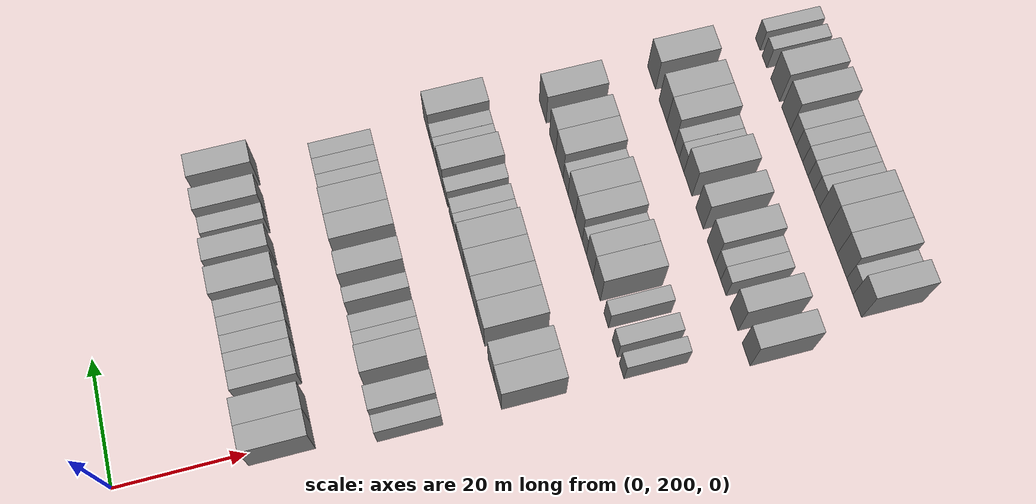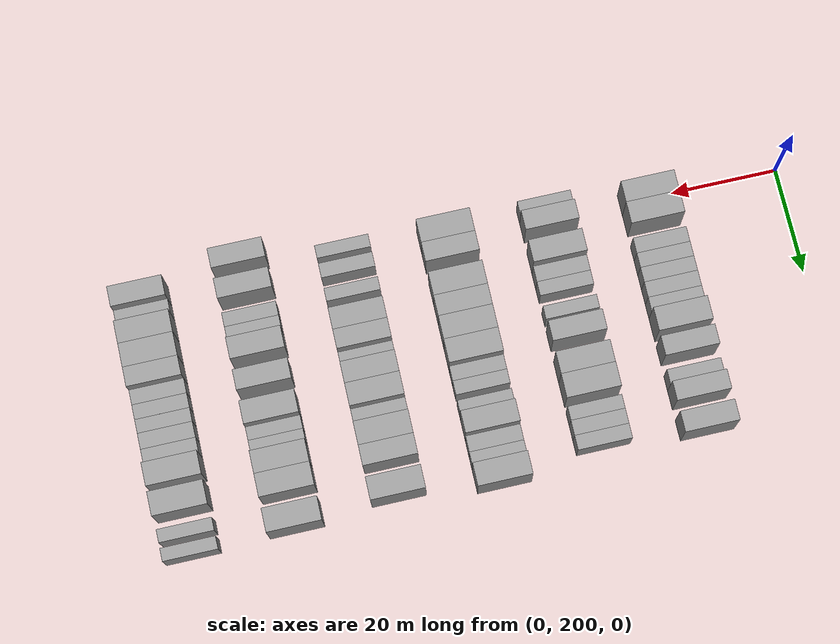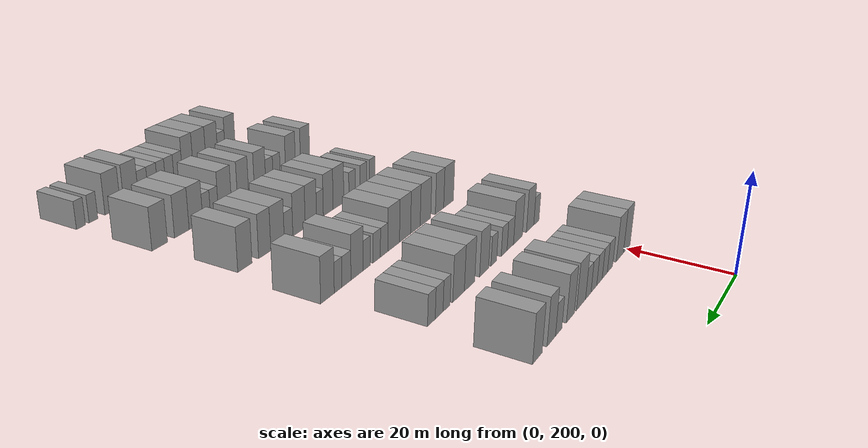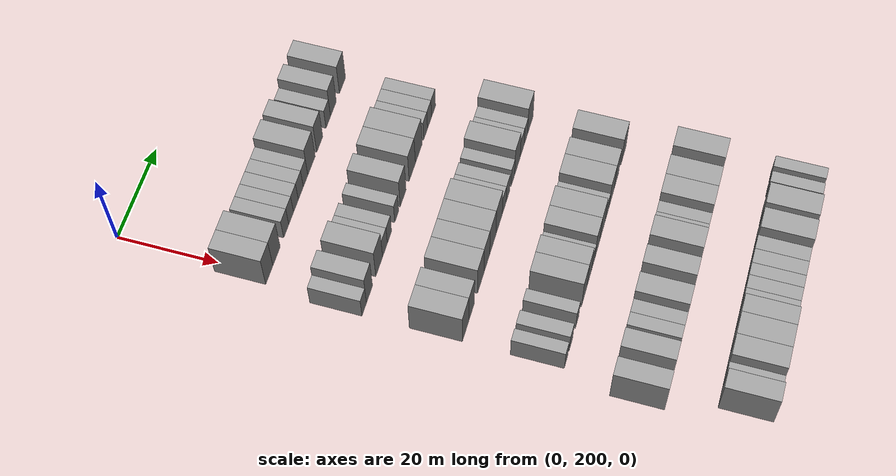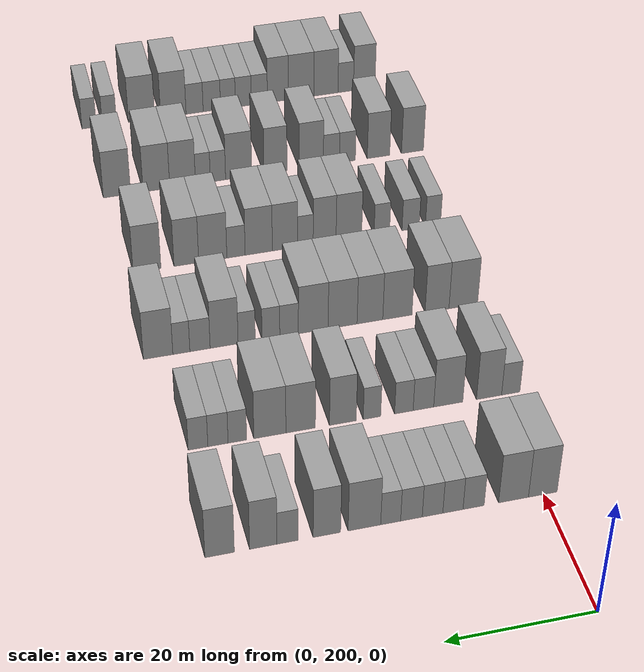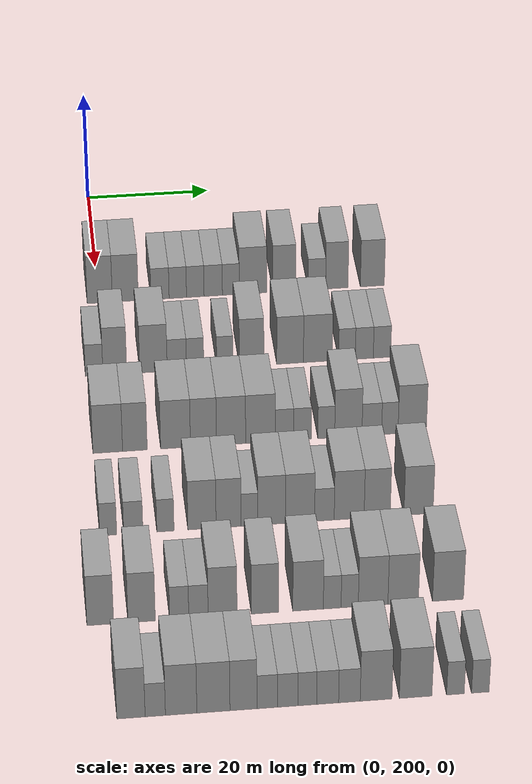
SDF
<sdf version="1.6">
 <world name="default">
  <model name="building_140">
   <static>1</static>
   <pose>25.0000 200.1590 0 0.000000 0.000000 0.000000</pose>
   <link name="link">
    <pose>0 0 4.50 0 0 0</pose>
    <collision name="collision"><geometry><box><size>10.0000 4.0054 9.0000</size></box></geometry></collision>
    <visual name="visual">
     <cast_shadows>0</cast_shadows>
     <geometry><box><size>10.0000 4.0054 9.0000</size></box></geometry>
     <material>
      <script>
       <uri>model://grey_wall/materials/scripts</uri>
       <uri>model://grey_wall/materials/textures</uri>
       <name>vrc/grey_wall</name>
      </script>
     </material>
    </visual>
   </link>
  </model>
  <model name="building_141">
   <static>1</static>
   <pose>25.0000 204.2304 0 0.000000 0.000000 0.000000</pose>
   <link name="link">
    <pose>0 0 4.50 0 0 0</pose>
    <collision name="collision"><geometry><box><size>10.0000 4.1374 9.0000</size></box></geometry></collision>
    <visual name="visual">
     <cast_shadows>0</cast_shadows>
     <geometry><box><size>10.0000 4.1374 9.0000</size></box></geometry>
     <material>
      <script>
       <uri>model://grey_wall/materials/scripts</uri>
       <uri>model://grey_wall/materials/textures</uri>
       <name>vrc/grey_wall</name>
      </script>
     </material>
    </visual>
   </link>
  </model>
  <model name="building_142">
   <static>1</static>
   <pose>25.0000 209.7519 0 0.000000 0.000000 0.000000</pose>
   <link name="link">
    <pose>0 0 3.00 0 0 0</pose>
    <collision name="collision"><geometry><box><size>10.0000 2.9057 6.0000</size></box></geometry></collision>
    <visual name="visual">
     <cast_shadows>0</cast_shadows>
     <geometry><box><size>10.0000 2.9057 6.0000</size></box></geometry>
     <material>
      <script>
       <uri>model://grey_wall/materials/scripts</uri>
       <uri>model://grey_wall/materials/textures</uri>
       <name>vrc/grey_wall</name>
      </script>
     </material>
    </visual>
   </link>
  </model>
  <model name="building_143">
   <static>1</static>
   <pose>25.0000 212.5921 0 0.000000 0.000000 0.000000</pose>
   <link name="link">
    <pose>0 0 3.00 0 0 0</pose>
    <collision name="collision"><geometry><box><size>10.0000 2.7747 6.0000</size></box></geometry></collision>
    <visual name="visual">
     <cast_shadows>0</cast_shadows>
     <geometry><box><size>10.0000 2.7747 6.0000</size></box></geometry>
     <material>
      <script>
       <uri>model://grey_wall/materials/scripts</uri>
       <uri>model://grey_wall/materials/textures</uri>
       <name>vrc/grey_wall</name>
      </script>
     </material>
    </visual>
   </link>
  </model>
  <model name="building_144">
   <static>1</static>
   <pose>25.0000 215.3852 0 0.000000 0.000000 0.000000</pose>
   <link name="link">
    <pose>0 0 3.00 0 0 0</pose>
    <collision name="collision"><geometry><box><size>10.0000 2.8116 6.0000</size></box></geometry></collision>
    <visual name="visual">
     <cast_shadows>0</cast_shadows>
     <geometry><box><size>10.0000 2.8116 6.0000</size></box></geometry>
     <material>
      <script>
       <uri>model://grey_wall/materials/scripts</uri>
       <uri>model://grey_wall/materials/textures</uri>
       <name>vrc/grey_wall</name>
      </script>
     </material>
    </visual>
   </link>
  </model>
  <model name="building_145">
   <static>1</static>
   <pose>25.0000 218.2593 0 0.000000 0.000000 0.000000</pose>
   <link name="link">
    <pose>0 0 3.00 0 0 0</pose>
    <collision name="collision"><geometry><box><size>10.0000 2.9365 6.0000</size></box></geometry></collision>
    <visual name="visual">
     <cast_shadows>0</cast_shadows>
     <geometry><box><size>10.0000 2.9365 6.0000</size></box></geometry>
     <material>
      <script>
       <uri>model://grey_wall/materials/scripts</uri>
       <uri>model://grey_wall/materials/textures</uri>
       <name>vrc/grey_wall</name>
      </script>
     </material>
    </visual>
   </link>
  </model>
  <model name="building_146">
   <static>1</static>
   <pose>25.0000 221.0781 0 0.000000 0.000000 0.000000</pose>
   <link name="link">
    <pose>0 0 3.00 0 0 0</pose>
    <collision name="collision"><geometry><box><size>10.0000 2.7011 6.0000</size></box></geometry></collision>
    <visual name="visual">
     <cast_shadows>0</cast_shadows>
     <geometry><box><size>10.0000 2.7011 6.0000</size></box></geometry>
     <material>
      <script>
       <uri>model://grey_wall/materials/scripts</uri>
       <uri>model://grey_wall/materials/textures</uri>
       <name>vrc/grey_wall</name>
      </script>
     </material>
    </visual>
   </link>
  </model>
  <model name="building_147">
   <static>1</static>
   <pose>25.0000 224.6262 0 0.000000 0.000000 0.000000</pose>
   <link name="link">
    <pose>0 0 4.50 0 0 0</pose>
    <collision name="collision"><geometry><box><size>10.0000 4.3952 9.0000</size></box></geometry></collision>
    <visual name="visual">
     <cast_shadows>0</cast_shadows>
     <geometry><box><size>10.0000 4.3952 9.0000</size></box></geometry>
     <material>
      <script>
       <uri>model://grey_wall/materials/scripts</uri>
       <uri>model://grey_wall/materials/textures</uri>
       <name>vrc/grey_wall</name>
      </script>
     </material>
    </visual>
   </link>
  </model>
  <model name="building_148">
   <static>1</static>
   <pose>25.0000 229.6574 0 0.000000 0.000000 0.000000</pose>
   <link name="link">
    <pose>0 0 4.50 0 0 0</pose>
    <collision name="collision"><geometry><box><size>10.0000 3.6674 9.0000</size></box></geometry></collision>
    <visual name="visual">
     <cast_shadows>0</cast_shadows>
     <geometry><box><size>10.0000 3.6674 9.0000</size></box></geometry>
     <material>
      <script>
       <uri>model://grey_wall/materials/scripts</uri>
       <uri>model://grey_wall/materials/textures</uri>
       <name>vrc/grey_wall</name>
      </script>
     </material>
    </visual>
   </link>
  </model>
  <model name="building_149">
   <static>1</static>
   <pose>25.0000 234.8963 0 0.000000 0.000000 0.000000</pose>
   <link name="link">
    <pose>0 0 3.00 0 0 0</pose>
    <collision name="collision"><geometry><box><size>10.0000 2.8103 6.0000</size></box></geometry></collision>
    <visual name="visual">
     <cast_shadows>0</cast_shadows>
     <geometry><box><size>10.0000 2.8103 6.0000</size></box></geometry>
     <material>
      <script>
       <uri>model://grey_wall/materials/scripts</uri>
       <uri>model://grey_wall/materials/textures</uri>
       <name>vrc/grey_wall</name>
      </script>
     </material>
    </visual>
   </link>
  </model>
  <model name="building_150">
   <static>1</static>
   <pose>25.0000 238.1025 0 0.000000 0.000000 0.000000</pose>
   <link name="link">
    <pose>0 0 4.50 0 0 0</pose>
    <collision name="collision"><geometry><box><size>10.0000 3.6022 9.0000</size></box></geometry></collision>
    <visual name="visual">
     <cast_shadows>0</cast_shadows>
     <geometry><box><size>10.0000 3.6022 9.0000</size></box></geometry>
     <material>
      <script>
       <uri>model://grey_wall/materials/scripts</uri>
       <uri>model://grey_wall/materials/textures</uri>
       <name>vrc/grey_wall</name>
      </script>
     </material>
    </visual>
   </link>
  </model>
  <model name="building_151">
   <static>1</static>
   <pose>25.0000 243.8329 0 0.000000 0.000000 0.000000</pose>
   <link name="link">
    <pose>0 0 4.50 0 0 0</pose>
    <collision name="collision"><geometry><box><size>10.0000 3.8587 9.0000</size></box></geometry></collision>
    <visual name="visual">
     <cast_shadows>0</cast_shadows>
     <geometry><box><size>10.0000 3.8587 9.0000</size></box></geometry>
     <material>
      <script>
       <uri>model://grey_wall/materials/scripts</uri>
       <uri>model://grey_wall/materials/textures</uri>
       <name>vrc/grey_wall</name>
      </script>
     </material>
    </visual>
   </link>
  </model>
  <model name="building_307">
   <static>1</static>
   <pose>44.0000 198.1488 0 0.000000 0.000000 0.000000</pose>
   <link name="link">
    <pose>0 0 3.00 0 0 0</pose>
    <collision name="collision"><geometry><box><size>10.0000 2.7019 6.0000</size></box></geometry></collision>
    <visual name="visual">
     <cast_shadows>0</cast_shadows>
     <geometry><box><size>10.0000 2.7019 6.0000</size></box></geometry>
     <material>
      <script>
       <uri>model://grey_wall/materials/scripts</uri>
       <uri>model://grey_wall/materials/textures</uri>
       <name>vrc/grey_wall</name>
      </script>
     </material>
    </visual>
   </link>
  </model>
  <model name="building_308">
   <static>1</static>
   <pose>44.0000 201.3424 0 0.000000 0.000000 0.000000</pose>
   <link name="link">
    <pose>0 0 4.50 0 0 0</pose>
    <collision name="collision"><geometry><box><size>10.0000 3.6854 9.0000</size></box></geometry></collision>
    <visual name="visual">
     <cast_shadows>0</cast_shadows>
     <geometry><box><size>10.0000 3.6854 9.0000</size></box></geometry>
     <material>
      <script>
       <uri>model://grey_wall/materials/scripts</uri>
       <uri>model://grey_wall/materials/textures</uri>
       <name>vrc/grey_wall</name>
      </script>
     </material>
    </visual>
   </link>
  </model>
  <model name="building_309">
   <static>1</static>
   <pose>44.0000 207.3023 0 0.000000 0.000000 0.000000</pose>
   <link name="link">
    <pose>0 0 4.50 0 0 0</pose>
    <collision name="collision"><geometry><box><size>10.0000 4.2344 9.0000</size></box></geometry></collision>
    <visual name="visual">
     <cast_shadows>0</cast_shadows>
     <geometry><box><size>10.0000 4.2344 9.0000</size></box></geometry>
     <material>
      <script>
       <uri>model://grey_wall/materials/scripts</uri>
       <uri>model://grey_wall/materials/textures</uri>
       <name>vrc/grey_wall</name>
      </script>
     </material>
    </visual>
   </link>
  </model>
  <model name="building_310">
   <static>1</static>
   <pose>44.0000 210.9108 0 0.000000 0.000000 0.000000</pose>
   <link name="link">
    <pose>0 0 3.00 0 0 0</pose>
    <collision name="collision"><geometry><box><size>10.0000 2.9826 6.0000</size></box></geometry></collision>
    <visual name="visual">
     <cast_shadows>0</cast_shadows>
     <geometry><box><size>10.0000 2.9826 6.0000</size></box></geometry>
     <material>
      <script>
       <uri>model://grey_wall/materials/scripts</uri>
       <uri>model://grey_wall/materials/textures</uri>
       <name>vrc/grey_wall</name>
      </script>
     </material>
    </visual>
   </link>
  </model>
  <model name="building_311">
   <static>1</static>
   <pose>44.0000 213.7410 0 0.000000 0.000000 0.000000</pose>
   <link name="link">
    <pose>0 0 3.00 0 0 0</pose>
    <collision name="collision"><geometry><box><size>10.0000 2.6779 6.0000</size></box></geometry></collision>
    <visual name="visual">
     <cast_shadows>0</cast_shadows>
     <geometry><box><size>10.0000 2.6779 6.0000</size></box></geometry>
     <material>
      <script>
       <uri>model://grey_wall/materials/scripts</uri>
       <uri>model://grey_wall/materials/textures</uri>
       <name>vrc/grey_wall</name>
      </script>
     </material>
    </visual>
   </link>
  </model>
  <model name="building_312">
   <static>1</static>
   <pose>44.0000 218.3348 0 0.000000 0.000000 0.000000</pose>
   <link name="link">
    <pose>0 0 3.00 0 0 0</pose>
    <collision name="collision"><geometry><box><size>10.0000 2.5097 6.0000</size></box></geometry></collision>
    <visual name="visual">
     <cast_shadows>0</cast_shadows>
     <geometry><box><size>10.0000 2.5097 6.0000</size></box></geometry>
     <material>
      <script>
       <uri>model://grey_wall/materials/scripts</uri>
       <uri>model://grey_wall/materials/textures</uri>
       <name>vrc/grey_wall</name>
      </script>
     </material>
    </visual>
   </link>
  </model>
  <model name="building_313">
   <static>1</static>
   <pose>44.0000 222.4960 0 0.000000 0.000000 0.000000</pose>
   <link name="link">
    <pose>0 0 4.50 0 0 0</pose>
    <collision name="collision"><geometry><box><size>10.0000 3.8126 9.0000</size></box></geometry></collision>
    <visual name="visual">
     <cast_shadows>0</cast_shadows>
     <geometry><box><size>10.0000 3.8126 9.0000</size></box></geometry>
     <material>
      <script>
       <uri>model://grey_wall/materials/scripts</uri>
       <uri>model://grey_wall/materials/textures</uri>
       <name>vrc/grey_wall</name>
      </script>
     </material>
    </visual>
   </link>
  </model>
  <model name="building_314">
   <static>1</static>
   <pose>44.0000 228.4842 0 0.000000 0.000000 0.000000</pose>
   <link name="link">
    <pose>0 0 4.50 0 0 0</pose>
    <collision name="collision"><geometry><box><size>10.0000 4.1638 9.0000</size></box></geometry></collision>
    <visual name="visual">
     <cast_shadows>0</cast_shadows>
     <geometry><box><size>10.0000 4.1638 9.0000</size></box></geometry>
     <material>
      <script>
       <uri>model://grey_wall/materials/scripts</uri>
       <uri>model://grey_wall/materials/textures</uri>
       <name>vrc/grey_wall</name>
      </script>
     </material>
    </visual>
   </link>
  </model>
  <model name="building_315">
   <static>1</static>
   <pose>44.0000 232.8150 0 0.000000 0.000000 0.000000</pose>
   <link name="link">
    <pose>0 0 4.50 0 0 0</pose>
    <collision name="collision"><geometry><box><size>10.0000 4.4979 9.0000</size></box></geometry></collision>
    <visual name="visual">
     <cast_shadows>0</cast_shadows>
     <geometry><box><size>10.0000 4.4979 9.0000</size></box></geometry>
     <material>
      <script>
       <uri>model://grey_wall/materials/scripts</uri>
       <uri>model://grey_wall/materials/textures</uri>
       <name>vrc/grey_wall</name>
      </script>
     </material>
    </visual>
   </link>
  </model>
  <model name="building_316">
   <static>1</static>
   <pose>44.0000 237.3608 0 0.000000 0.000000 0.000000</pose>
   <link name="link">
    <pose>0 0 3.00 0 0 0</pose>
    <collision name="collision"><geometry><box><size>10.0000 2.5938 6.0000</size></box></geometry></collision>
    <visual name="visual">
     <cast_shadows>0</cast_shadows>
     <geometry><box><size>10.0000 2.5938 6.0000</size></box></geometry>
     <material>
      <script>
       <uri>model://grey_wall/materials/scripts</uri>
       <uri>model://grey_wall/materials/textures</uri>
       <name>vrc/grey_wall</name>
      </script>
     </material>
    </visual>
   </link>
  </model>
  <model name="building_317">
   <static>1</static>
   <pose>44.0000 240.0627 0 0.000000 0.000000 0.000000</pose>
   <link name="link">
    <pose>0 0 3.00 0 0 0</pose>
    <collision name="collision"><geometry><box><size>10.0000 2.8099 6.0000</size></box></geometry></collision>
    <visual name="visual">
     <cast_shadows>0</cast_shadows>
     <geometry><box><size>10.0000 2.8099 6.0000</size></box></geometry>
     <material>
      <script>
       <uri>model://grey_wall/materials/scripts</uri>
       <uri>model://grey_wall/materials/textures</uri>
       <name>vrc/grey_wall</name>
      </script>
     </material>
    </visual>
   </link>
  </model>
  <model name="building_318">
   <static>1</static>
   <pose>44.0000 242.8304 0 0.000000 0.000000 0.000000</pose>
   <link name="link">
    <pose>0 0 3.00 0 0 0</pose>
    <collision name="collision"><geometry><box><size>10.0000 2.7255 6.0000</size></box></geometry></collision>
    <visual name="visual">
     <cast_shadows>0</cast_shadows>
     <geometry><box><size>10.0000 2.7255 6.0000</size></box></geometry>
     <material>
      <script>
       <uri>model://grey_wall/materials/scripts</uri>
       <uri>model://grey_wall/materials/textures</uri>
       <name>vrc/grey_wall</name>
      </script>
     </material>
    </visual>
   </link>
  </model>
  <model name="building_486">
   <static>1</static>
   <pose>63.0000 199.0550 0 0.000000 0.000000 0.000000</pose>
   <link name="link">
    <pose>0 0 4.50 0 0 0</pose>
    <collision name="collision"><geometry><box><size>10.0000 4.4275 9.0000</size></box></geometry></collision>
    <visual name="visual">
     <cast_shadows>0</cast_shadows>
     <geometry><box><size>10.0000 4.4275 9.0000</size></box></geometry>
     <material>
      <script>
       <uri>model://grey_wall/materials/scripts</uri>
       <uri>model://grey_wall/materials/textures</uri>
       <name>vrc/grey_wall</name>
      </script>
     </material>
    </visual>
   </link>
  </model>
  <model name="building_487">
   <static>1</static>
   <pose>63.0000 203.1092 0 0.000000 0.000000 0.000000</pose>
   <link name="link">
    <pose>0 0 4.50 0 0 0</pose>
    <collision name="collision"><geometry><box><size>10.0000 3.6809 9.0000</size></box></geometry></collision>
    <visual name="visual">
     <cast_shadows>0</cast_shadows>
     <geometry><box><size>10.0000 3.6809 9.0000</size></box></geometry>
     <material>
      <script>
       <uri>model://grey_wall/materials/scripts</uri>
       <uri>model://grey_wall/materials/textures</uri>
       <name>vrc/grey_wall</name>
      </script>
     </material>
    </visual>
   </link>
  </model>
  <model name="building_488">
   <static>1</static>
   <pose>63.0000 209.1807 0 0.000000 0.000000 0.000000</pose>
   <link name="link">
    <pose>0 0 4.50 0 0 0</pose>
    <collision name="collision"><geometry><box><size>10.0000 4.4621 9.0000</size></box></geometry></collision>
    <visual name="visual">
     <cast_shadows>0</cast_shadows>
     <geometry><box><size>10.0000 4.4621 9.0000</size></box></geometry>
     <material>
      <script>
       <uri>model://grey_wall/materials/scripts</uri>
       <uri>model://grey_wall/materials/textures</uri>
       <name>vrc/grey_wall</name>
      </script>
     </material>
    </visual>
   </link>
  </model>
  <model name="building_489">
   <static>1</static>
   <pose>63.0000 213.3642 0 0.000000 0.000000 0.000000</pose>
   <link name="link">
    <pose>0 0 4.50 0 0 0</pose>
    <collision name="collision"><geometry><box><size>10.0000 3.9049 9.0000</size></box></geometry></collision>
    <visual name="visual">
     <cast_shadows>0</cast_shadows>
     <geometry><box><size>10.0000 3.9049 9.0000</size></box></geometry>
     <material>
      <script>
       <uri>model://grey_wall/materials/scripts</uri>
       <uri>model://grey_wall/materials/textures</uri>
       <name>vrc/grey_wall</name>
      </script>
     </material>
    </visual>
   </link>
  </model>
  <model name="building_490">
   <static>1</static>
   <pose>63.0000 217.5057 0 0.000000 0.000000 0.000000</pose>
   <link name="link">
    <pose>0 0 4.50 0 0 0</pose>
    <collision name="collision"><geometry><box><size>10.0000 4.3782 9.0000</size></box></geometry></collision>
    <visual name="visual">
     <cast_shadows>0</cast_shadows>
     <geometry><box><size>10.0000 4.3782 9.0000</size></box></geometry>
     <material>
      <script>
       <uri>model://grey_wall/materials/scripts</uri>
       <uri>model://grey_wall/materials/textures</uri>
       <name>vrc/grey_wall</name>
      </script>
     </material>
    </visual>
   </link>
  </model>
  <model name="building_491">
   <static>1</static>
   <pose>63.0000 221.9222 0 0.000000 0.000000 0.000000</pose>
   <link name="link">
    <pose>0 0 4.50 0 0 0</pose>
    <collision name="collision"><geometry><box><size>10.0000 4.4547 9.0000</size></box></geometry></collision>
    <visual name="visual">
     <cast_shadows>0</cast_shadows>
     <geometry><box><size>10.0000 4.4547 9.0000</size></box></geometry>
     <material>
      <script>
       <uri>model://grey_wall/materials/scripts</uri>
       <uri>model://grey_wall/materials/textures</uri>
       <name>vrc/grey_wall</name>
      </script>
     </material>
    </visual>
   </link>
  </model>
  <model name="building_492">
   <static>1</static>
   <pose>63.0000 225.5348 0 0.000000 0.000000 0.000000</pose>
   <link name="link">
    <pose>0 0 3.00 0 0 0</pose>
    <collision name="collision"><geometry><box><size>10.0000 2.7705 6.0000</size></box></geometry></collision>
    <visual name="visual">
     <cast_shadows>0</cast_shadows>
     <geometry><box><size>10.0000 2.7705 6.0000</size></box></geometry>
     <material>
      <script>
       <uri>model://grey_wall/materials/scripts</uri>
       <uri>model://grey_wall/materials/textures</uri>
       <name>vrc/grey_wall</name>
      </script>
     </material>
    </visual>
   </link>
  </model>
  <model name="building_493">
   <static>1</static>
   <pose>63.0000 228.2437 0 0.000000 0.000000 0.000000</pose>
   <link name="link">
    <pose>0 0 3.00 0 0 0</pose>
    <collision name="collision"><geometry><box><size>10.0000 2.6472 6.0000</size></box></geometry></collision>
    <visual name="visual">
     <cast_shadows>0</cast_shadows>
     <geometry><box><size>10.0000 2.6472 6.0000</size></box></geometry>
     <material>
      <script>
       <uri>model://grey_wall/materials/scripts</uri>
       <uri>model://grey_wall/materials/textures</uri>
       <name>vrc/grey_wall</name>
      </script>
     </material>
    </visual>
   </link>
  </model>
  <model name="building_494">
   <static>1</static>
   <pose>63.0000 231.8368 0 0.000000 0.000000 0.000000</pose>
   <link name="link">
    <pose>0 0 3.00 0 0 0</pose>
    <collision name="collision"><geometry><box><size>10.0000 2.5389 6.0000</size></box></geometry></collision>
    <visual name="visual">
     <cast_shadows>0</cast_shadows>
     <geometry><box><size>10.0000 2.5389 6.0000</size></box></geometry>
     <material>
      <script>
       <uri>model://grey_wall/materials/scripts</uri>
       <uri>model://grey_wall/materials/textures</uri>
       <name>vrc/grey_wall</name>
      </script>
     </material>
    </visual>
   </link>
  </model>
  <model name="building_495">
   <static>1</static>
   <pose>63.0000 235.1678 0 0.000000 0.000000 0.000000</pose>
   <link name="link">
    <pose>0 0 4.50 0 0 0</pose>
    <collision name="collision"><geometry><box><size>10.0000 4.1231 9.0000</size></box></geometry></collision>
    <visual name="visual">
     <cast_shadows>0</cast_shadows>
     <geometry><box><size>10.0000 4.1231 9.0000</size></box></geometry>
     <material>
      <script>
       <uri>model://grey_wall/materials/scripts</uri>
       <uri>model://grey_wall/materials/textures</uri>
       <name>vrc/grey_wall</name>
      </script>
     </material>
    </visual>
   </link>
  </model>
  <model name="building_496">
   <static>1</static>
   <pose>63.0000 238.7147 0 0.000000 0.000000 0.000000</pose>
   <link name="link">
    <pose>0 0 3.00 0 0 0</pose>
    <collision name="collision"><geometry><box><size>10.0000 2.9708 6.0000</size></box></geometry></collision>
    <visual name="visual">
     <cast_shadows>0</cast_shadows>
     <geometry><box><size>10.0000 2.9708 6.0000</size></box></geometry>
     <material>
      <script>
       <uri>model://grey_wall/materials/scripts</uri>
       <uri>model://grey_wall/materials/textures</uri>
       <name>vrc/grey_wall</name>
      </script>
     </material>
    </visual>
   </link>
  </model>
  <model name="building_497">
   <static>1</static>
   <pose>63.0000 241.4431 0 0.000000 0.000000 0.000000</pose>
   <link name="link">
    <pose>0 0 3.00 0 0 0</pose>
    <collision name="collision"><geometry><box><size>10.0000 2.4859 6.0000</size></box></geometry></collision>
    <visual name="visual">
     <cast_shadows>0</cast_shadows>
     <geometry><box><size>10.0000 2.4859 6.0000</size></box></geometry>
     <material>
      <script>
       <uri>model://grey_wall/materials/scripts</uri>
       <uri>model://grey_wall/materials/textures</uri>
       <name>vrc/grey_wall</name>
      </script>
     </material>
    </visual>
   </link>
  </model>
  <model name="building_498">
   <static>1</static>
   <pose>63.0000 244.8327 0 0.000000 0.000000 0.000000</pose>
   <link name="link">
    <pose>0 0 4.50 0 0 0</pose>
    <collision name="collision"><geometry><box><size>10.0000 4.2933 9.0000</size></box></geometry></collision>
    <visual name="visual">
     <cast_shadows>0</cast_shadows>
     <geometry><box><size>10.0000 4.2933 9.0000</size></box></geometry>
     <material>
      <script>
       <uri>model://grey_wall/materials/scripts</uri>
       <uri>model://grey_wall/materials/textures</uri>
       <name>vrc/grey_wall</name>
      </script>
     </material>
    </visual>
   </link>
  </model>
  <model name="building_648">
   <static>1</static>
   <pose>82.0000 197.9364 0 0.000000 0.000000 0.000000</pose>
   <link name="link">
    <pose>0 0 3.00 0 0 0</pose>
    <collision name="collision"><geometry><box><size>10.0000 2.4575 6.0000</size></box></geometry></collision>
    <visual name="visual">
     <cast_shadows>0</cast_shadows>
     <geometry><box><size>10.0000 2.4575 6.0000</size></box></geometry>
     <material>
      <script>
       <uri>model://grey_wall/materials/scripts</uri>
       <uri>model://grey_wall/materials/textures</uri>
       <name>vrc/grey_wall</name>
      </script>
     </material>
    </visual>
   </link>
  </model>
  <model name="building_649">
   <static>1</static>
   <pose>82.0000 201.5568 0 0.000000 0.000000 0.000000</pose>
   <link name="link">
    <pose>0 0 3.00 0 0 0</pose>
    <collision name="collision"><geometry><box><size>10.0000 2.7833 6.0000</size></box></geometry></collision>
    <visual name="visual">
     <cast_shadows>0</cast_shadows>
     <geometry><box><size>10.0000 2.7833 6.0000</size></box></geometry>
     <material>
      <script>
       <uri>model://grey_wall/materials/scripts</uri>
       <uri>model://grey_wall/materials/textures</uri>
       <name>vrc/grey_wall</name>
      </script>
     </material>
    </visual>
   </link>
  </model>
  <model name="building_650">
   <static>1</static>
   <pose>82.0000 206.1952 0 0.000000 0.000000 0.000000</pose>
   <link name="link">
    <pose>0 0 3.00 0 0 0</pose>
    <collision name="collision"><geometry><box><size>10.0000 2.4934 6.0000</size></box></geometry></collision>
    <visual name="visual">
     <cast_shadows>0</cast_shadows>
     <geometry><box><size>10.0000 2.4934 6.0000</size></box></geometry>
     <material>
      <script>
       <uri>model://grey_wall/materials/scripts</uri>
       <uri>model://grey_wall/materials/textures</uri>
       <name>vrc/grey_wall</name>
      </script>
     </material>
    </visual>
   </link>
  </model>
  <model name="building_651">
   <static>1</static>
   <pose>82.0000 211.4859 0 0.000000 0.000000 0.000000</pose>
   <link name="link">
    <pose>0 0 4.50 0 0 0</pose>
    <collision name="collision"><geometry><box><size>10.0000 4.0881 9.0000</size></box></geometry></collision>
    <visual name="visual">
     <cast_shadows>0</cast_shadows>
     <geometry><box><size>10.0000 4.0881 9.0000</size></box></geometry>
     <material>
      <script>
       <uri>model://grey_wall/materials/scripts</uri>
       <uri>model://grey_wall/materials/textures</uri>
       <name>vrc/grey_wall</name>
      </script>
     </material>
    </visual>
   </link>
  </model>
  <model name="building_652">
   <static>1</static>
   <pose>82.0000 215.3444 0 0.000000 0.000000 0.000000</pose>
   <link name="link">
    <pose>0 0 4.50 0 0 0</pose>
    <collision name="collision"><geometry><box><size>10.0000 3.6287 9.0000</size></box></geometry></collision>
    <visual name="visual">
     <cast_shadows>0</cast_shadows>
     <geometry><box><size>10.0000 3.6287 9.0000</size></box></geometry>
     <material>
      <script>
       <uri>model://grey_wall/materials/scripts</uri>
       <uri>model://grey_wall/materials/textures</uri>
       <name>vrc/grey_wall</name>
      </script>
     </material>
    </visual>
   </link>
  </model>
  <model name="building_653">
   <static>1</static>
   <pose>82.0000 218.3775 0 0.000000 0.000000 0.000000</pose>
   <link name="link">
    <pose>0 0 3.00 0 0 0</pose>
    <collision name="collision"><geometry><box><size>10.0000 2.4375 6.0000</size></box></geometry></collision>
    <visual name="visual">
     <cast_shadows>0</cast_shadows>
     <geometry><box><size>10.0000 2.4375 6.0000</size></box></geometry>
     <material>
      <script>
       <uri>model://grey_wall/materials/scripts</uri>
       <uri>model://grey_wall/materials/textures</uri>
       <name>vrc/grey_wall</name>
      </script>
     </material>
    </visual>
   </link>
  </model>
  <model name="building_654">
   <static>1</static>
   <pose>82.0000 221.5979 0 0.000000 0.000000 0.000000</pose>
   <link name="link">
    <pose>0 0 4.50 0 0 0</pose>
    <collision name="collision"><geometry><box><size>10.0000 4.0035 9.0000</size></box></geometry></collision>
    <visual name="visual">
     <cast_shadows>0</cast_shadows>
     <geometry><box><size>10.0000 4.0035 9.0000</size></box></geometry>
     <material>
      <script>
       <uri>model://grey_wall/materials/scripts</uri>
       <uri>model://grey_wall/materials/textures</uri>
       <name>vrc/grey_wall</name>
      </script>
     </material>
    </visual>
   </link>
  </model>
  <model name="building_655">
   <static>1</static>
   <pose>82.0000 225.7274 0 0.000000 0.000000 0.000000</pose>
   <link name="link">
    <pose>0 0 4.50 0 0 0</pose>
    <collision name="collision"><geometry><box><size>10.0000 4.2553 9.0000</size></box></geometry></collision>
    <visual name="visual">
     <cast_shadows>0</cast_shadows>
     <geometry><box><size>10.0000 4.2553 9.0000</size></box></geometry>
     <material>
      <script>
       <uri>model://grey_wall/materials/scripts</uri>
       <uri>model://grey_wall/materials/textures</uri>
       <name>vrc/grey_wall</name>
      </script>
     </material>
    </visual>
   </link>
  </model>
  <model name="building_656">
   <static>1</static>
   <pose>82.0000 229.2806 0 0.000000 0.000000 0.000000</pose>
   <link name="link">
    <pose>0 0 3.00 0 0 0</pose>
    <collision name="collision"><geometry><box><size>10.0000 2.8510 6.0000</size></box></geometry></collision>
    <visual name="visual">
     <cast_shadows>0</cast_shadows>
     <geometry><box><size>10.0000 2.8510 6.0000</size></box></geometry>
     <material>
      <script>
       <uri>model://grey_wall/materials/scripts</uri>
       <uri>model://grey_wall/materials/textures</uri>
       <name>vrc/grey_wall</name>
      </script>
     </material>
    </visual>
   </link>
  </model>
  <model name="building_657">
   <static>1</static>
   <pose>82.0000 232.8913 0 0.000000 0.000000 0.000000</pose>
   <link name="link">
    <pose>0 0 4.50 0 0 0</pose>
    <collision name="collision"><geometry><box><size>10.0000 4.3705 9.0000</size></box></geometry></collision>
    <visual name="visual">
     <cast_shadows>0</cast_shadows>
     <geometry><box><size>10.0000 4.3705 9.0000</size></box></geometry>
     <material>
      <script>
       <uri>model://grey_wall/materials/scripts</uri>
       <uri>model://grey_wall/materials/textures</uri>
       <name>vrc/grey_wall</name>
      </script>
     </material>
    </visual>
   </link>
  </model>
  <model name="building_658">
   <static>1</static>
   <pose>82.0000 236.9860 0 0.000000 0.000000 0.000000</pose>
   <link name="link">
    <pose>0 0 4.50 0 0 0</pose>
    <collision name="collision"><geometry><box><size>10.0000 3.8188 9.0000</size></box></geometry></collision>
    <visual name="visual">
     <cast_shadows>0</cast_shadows>
     <geometry><box><size>10.0000 3.8188 9.0000</size></box></geometry>
     <material>
      <script>
       <uri>model://grey_wall/materials/scripts</uri>
       <uri>model://grey_wall/materials/textures</uri>
       <name>vrc/grey_wall</name>
      </script>
     </material>
    </visual>
   </link>
  </model>
  <model name="building_659">
   <static>1</static>
   <pose>82.0000 243.0309 0 0.000000 0.000000 0.000000</pose>
   <link name="link">
    <pose>0 0 4.50 0 0 0</pose>
    <collision name="collision"><geometry><box><size>10.0000 4.2709 9.0000</size></box></geometry></collision>
    <visual name="visual">
     <cast_shadows>0</cast_shadows>
     <geometry><box><size>10.0000 4.2709 9.0000</size></box></geometry>
     <material>
      <script>
       <uri>model://grey_wall/materials/scripts</uri>
       <uri>model://grey_wall/materials/textures</uri>
       <name>vrc/grey_wall</name>
      </script>
     </material>
    </visual>
   </link>
  </model>
  <model name="building_830">
   <static>1</static>
   <pose>101.0000 195.6393 0 0.000000 0.000000 0.000000</pose>
   <link name="link">
    <pose>0 0 4.50 0 0 0</pose>
    <collision name="collision"><geometry><box><size>10.0000 3.7282 9.0000</size></box></geometry></collision>
    <visual name="visual">
     <cast_shadows>0</cast_shadows>
     <geometry><box><size>10.0000 3.7282 9.0000</size></box></geometry>
     <material>
      <script>
       <uri>model://grey_wall/materials/scripts</uri>
       <uri>model://grey_wall/materials/textures</uri>
       <name>vrc/grey_wall</name>
      </script>
     </material>
    </visual>
   </link>
  </model>
  <model name="building_831">
   <static>1</static>
   <pose>101.0000 201.4056 0 0.000000 0.000000 0.000000</pose>
   <link name="link">
    <pose>0 0 4.50 0 0 0</pose>
    <collision name="collision"><geometry><box><size>10.0000 3.8043 9.0000</size></box></geometry></collision>
    <visual name="visual">
     <cast_shadows>0</cast_shadows>
     <geometry><box><size>10.0000 3.8043 9.0000</size></box></geometry>
     <material>
      <script>
       <uri>model://grey_wall/materials/scripts</uri>
       <uri>model://grey_wall/materials/textures</uri>
       <name>vrc/grey_wall</name>
      </script>
     </material>
    </visual>
   </link>
  </model>
  <model name="building_832">
   <static>1</static>
   <pose>101.0000 206.6411 0 0.000000 0.000000 0.000000</pose>
   <link name="link">
    <pose>0 0 3.00 0 0 0</pose>
    <collision name="collision"><geometry><box><size>10.0000 2.6668 6.0000</size></box></geometry></collision>
    <visual name="visual">
     <cast_shadows>0</cast_shadows>
     <geometry><box><size>10.0000 2.6668 6.0000</size></box></geometry>
     <material>
      <script>
       <uri>model://grey_wall/materials/scripts</uri>
       <uri>model://grey_wall/materials/textures</uri>
       <name>vrc/grey_wall</name>
      </script>
     </material>
    </visual>
   </link>
  </model>
  <model name="building_833">
   <static>1</static>
   <pose>101.0000 209.3281 0 0.000000 0.000000 0.000000</pose>
   <link name="link">
    <pose>0 0 3.00 0 0 0</pose>
    <collision name="collision"><geometry><box><size>10.0000 2.7071 6.0000</size></box></geometry></collision>
    <visual name="visual">
     <cast_shadows>0</cast_shadows>
     <geometry><box><size>10.0000 2.7071 6.0000</size></box></geometry>
     <material>
      <script>
       <uri>model://grey_wall/materials/scripts</uri>
       <uri>model://grey_wall/materials/textures</uri>
       <name>vrc/grey_wall</name>
      </script>
     </material>
    </visual>
   </link>
  </model>
  <model name="building_834">
   <static>1</static>
   <pose>101.0000 212.7083 0 0.000000 0.000000 0.000000</pose>
   <link name="link">
    <pose>0 0 4.50 0 0 0</pose>
    <collision name="collision"><geometry><box><size>10.0000 4.0533 9.0000</size></box></geometry></collision>
    <visual name="visual">
     <cast_shadows>0</cast_shadows>
     <geometry><box><size>10.0000 4.0533 9.0000</size></box></geometry>
     <material>
      <script>
       <uri>model://grey_wall/materials/scripts</uri>
       <uri>model://grey_wall/materials/textures</uri>
       <name>vrc/grey_wall</name>
      </script>
     </material>
    </visual>
   </link>
  </model>
  <model name="building_835">
   <static>1</static>
   <pose>101.0000 218.6428 0 0.000000 0.000000 0.000000</pose>
   <link name="link">
    <pose>0 0 4.50 0 0 0</pose>
    <collision name="collision"><geometry><box><size>10.0000 3.8157 9.0000</size></box></geometry></collision>
    <visual name="visual">
     <cast_shadows>0</cast_shadows>
     <geometry><box><size>10.0000 3.8157 9.0000</size></box></geometry>
     <material>
      <script>
       <uri>model://grey_wall/materials/scripts</uri>
       <uri>model://grey_wall/materials/textures</uri>
       <name>vrc/grey_wall</name>
      </script>
     </material>
    </visual>
   </link>
  </model>
  <model name="building_836">
   <static>1</static>
   <pose>101.0000 224.7017 0 0.000000 0.000000 0.000000</pose>
   <link name="link">
    <pose>0 0 4.50 0 0 0</pose>
    <collision name="collision"><geometry><box><size>10.0000 4.3021 9.0000</size></box></geometry></collision>
    <visual name="visual">
     <cast_shadows>0</cast_shadows>
     <geometry><box><size>10.0000 4.3021 9.0000</size></box></geometry>
     <material>
      <script>
       <uri>model://grey_wall/materials/scripts</uri>
       <uri>model://grey_wall/materials/textures</uri>
       <name>vrc/grey_wall</name>
      </script>
     </material>
    </visual>
   </link>
  </model>
  <model name="building_837">
   <static>1</static>
   <pose>101.0000 228.1011 0 0.000000 0.000000 0.000000</pose>
   <link name="link">
    <pose>0 0 3.00 0 0 0</pose>
    <collision name="collision"><geometry><box><size>10.0000 2.4968 6.0000</size></box></geometry></collision>
    <visual name="visual">
     <cast_shadows>0</cast_shadows>
     <geometry><box><size>10.0000 2.4968 6.0000</size></box></geometry>
     <material>
      <script>
       <uri>model://grey_wall/materials/scripts</uri>
       <uri>model://grey_wall/materials/textures</uri>
       <name>vrc/grey_wall</name>
      </script>
     </material>
    </visual>
   </link>
  </model>
  <model name="building_838">
   <static>1</static>
   <pose>101.0000 230.5631 0 0.000000 0.000000 0.000000</pose>
   <link name="link">
    <pose>0 0 3.00 0 0 0</pose>
    <collision name="collision"><geometry><box><size>10.0000 2.4270 6.0000</size></box></geometry></collision>
    <visual name="visual">
     <cast_shadows>0</cast_shadows>
     <geometry><box><size>10.0000 2.4270 6.0000</size></box></geometry>
     <material>
      <script>
       <uri>model://grey_wall/materials/scripts</uri>
       <uri>model://grey_wall/materials/textures</uri>
       <name>vrc/grey_wall</name>
      </script>
     </material>
    </visual>
   </link>
  </model>
  <model name="building_839">
   <static>1</static>
   <pose>101.0000 233.8671 0 0.000000 0.000000 0.000000</pose>
   <link name="link">
    <pose>0 0 4.50 0 0 0</pose>
    <collision name="collision"><geometry><box><size>10.0000 4.1810 9.0000</size></box></geometry></collision>
    <visual name="visual">
     <cast_shadows>0</cast_shadows>
     <geometry><box><size>10.0000 4.1810 9.0000</size></box></geometry>
     <material>
      <script>
       <uri>model://grey_wall/materials/scripts</uri>
       <uri>model://grey_wall/materials/textures</uri>
       <name>vrc/grey_wall</name>
      </script>
     </material>
    </visual>
   </link>
  </model>
  <model name="building_840">
   <static>1</static>
   <pose>101.0000 238.1121 0 0.000000 0.000000 0.000000</pose>
   <link name="link">
    <pose>0 0 4.50 0 0 0</pose>
    <collision name="collision"><geometry><box><size>10.0000 4.3090 9.0000</size></box></geometry></collision>
    <visual name="visual">
     <cast_shadows>0</cast_shadows>
     <geometry><box><size>10.0000 4.3090 9.0000</size></box></geometry>
     <material>
      <script>
       <uri>model://grey_wall/materials/scripts</uri>
       <uri>model://grey_wall/materials/textures</uri>
       <name>vrc/grey_wall</name>
      </script>
     </material>
    </visual>
   </link>
  </model>
  <model name="building_841">
   <static>1</static>
   <pose>101.0000 244.4631 0 0.000000 0.000000 0.000000</pose>
   <link name="link">
    <pose>0 0 4.50 0 0 0</pose>
    <collision name="collision"><geometry><box><size>10.0000 4.3930 9.0000</size></box></geometry></collision>
    <visual name="visual">
     <cast_shadows>0</cast_shadows>
     <geometry><box><size>10.0000 4.3930 9.0000</size></box></geometry>
     <material>
      <script>
       <uri>model://grey_wall/materials/scripts</uri>
       <uri>model://grey_wall/materials/textures</uri>
       <name>vrc/grey_wall</name>
      </script>
     </material>
    </visual>
   </link>
  </model>
  <model name="building_1005">
   <static>1</static>
   <pose>120.0000 198.6137 0 0.000000 0.000000 0.000000</pose>
   <link name="link">
    <pose>0 0 4.50 0 0 0</pose>
    <collision name="collision"><geometry><box><size>10.0000 3.7964 9.0000</size></box></geometry></collision>
    <visual name="visual">
     <cast_shadows>0</cast_shadows>
     <geometry><box><size>10.0000 3.7964 9.0000</size></box></geometry>
     <material>
      <script>
       <uri>model://grey_wall/materials/scripts</uri>
       <uri>model://grey_wall/materials/textures</uri>
       <name>vrc/grey_wall</name>
      </script>
     </material>
    </visual>
   </link>
  </model>
  <model name="building_1006">
   <static>1</static>
   <pose>120.0000 201.8765 0 0.000000 0.000000 0.000000</pose>
   <link name="link">
    <pose>0 0 3.00 0 0 0</pose>
    <collision name="collision"><geometry><box><size>10.0000 2.7291 6.0000</size></box></geometry></collision>
    <visual name="visual">
     <cast_shadows>0</cast_shadows>
     <geometry><box><size>10.0000 2.7291 6.0000</size></box></geometry>
     <material>
      <script>
       <uri>model://grey_wall/materials/scripts</uri>
       <uri>model://grey_wall/materials/textures</uri>
       <name>vrc/grey_wall</name>
      </script>
     </material>
    </visual>
   </link>
  </model>
  <model name="building_1007">
   <static>1</static>
   <pose>120.0000 205.3583 0 0.000000 0.000000 0.000000</pose>
   <link name="link">
    <pose>0 0 4.50 0 0 0</pose>
    <collision name="collision"><geometry><box><size>10.0000 4.2345 9.0000</size></box></geometry></collision>
    <visual name="visual">
     <cast_shadows>0</cast_shadows>
     <geometry><box><size>10.0000 4.2345 9.0000</size></box></geometry>
     <material>
      <script>
       <uri>model://grey_wall/materials/scripts</uri>
       <uri>model://grey_wall/materials/textures</uri>
       <name>vrc/grey_wall</name>
      </script>
     </material>
    </visual>
   </link>
  </model>
  <model name="building_1008">
   <static>1</static>
   <pose>120.0000 209.7074 0 0.000000 0.000000 0.000000</pose>
   <link name="link">
    <pose>0 0 4.50 0 0 0</pose>
    <collision name="collision"><geometry><box><size>10.0000 4.4637 9.0000</size></box></geometry></collision>
    <visual name="visual">
     <cast_shadows>0</cast_shadows>
     <geometry><box><size>10.0000 4.4637 9.0000</size></box></geometry>
     <material>
      <script>
       <uri>model://grey_wall/materials/scripts</uri>
       <uri>model://grey_wall/materials/textures</uri>
       <name>vrc/grey_wall</name>
      </script>
     </material>
    </visual>
   </link>
  </model>
  <model name="building_1009">
   <static>1</static>
   <pose>120.0000 213.7612 0 0.000000 0.000000 0.000000</pose>
   <link name="link">
    <pose>0 0 4.50 0 0 0</pose>
    <collision name="collision"><geometry><box><size>10.0000 3.6440 9.0000</size></box></geometry></collision>
    <visual name="visual">
     <cast_shadows>0</cast_shadows>
     <geometry><box><size>10.0000 3.6440 9.0000</size></box></geometry>
     <material>
      <script>
       <uri>model://grey_wall/materials/scripts</uri>
       <uri>model://grey_wall/materials/textures</uri>
       <name>vrc/grey_wall</name>
      </script>
     </material>
    </visual>
   </link>
  </model>
  <model name="building_1010">
   <static>1</static>
   <pose>120.0000 216.9775 0 0.000000 0.000000 0.000000</pose>
   <link name="link">
    <pose>0 0 3.00 0 0 0</pose>
    <collision name="collision"><geometry><box><size>10.0000 2.7886 6.0000</size></box></geometry></collision>
    <visual name="visual">
     <cast_shadows>0</cast_shadows>
     <geometry><box><size>10.0000 2.7886 6.0000</size></box></geometry>
     <material>
      <script>
       <uri>model://grey_wall/materials/scripts</uri>
       <uri>model://grey_wall/materials/textures</uri>
       <name>vrc/grey_wall</name>
      </script>
     </material>
    </visual>
   </link>
  </model>
  <model name="building_1011">
   <static>1</static>
   <pose>120.0000 219.7453 0 0.000000 0.000000 0.000000</pose>
   <link name="link">
    <pose>0 0 3.00 0 0 0</pose>
    <collision name="collision"><geometry><box><size>10.0000 2.7471 6.0000</size></box></geometry></collision>
    <visual name="visual">
     <cast_shadows>0</cast_shadows>
     <geometry><box><size>10.0000 2.7471 6.0000</size></box></geometry>
     <material>
      <script>
       <uri>model://grey_wall/materials/scripts</uri>
       <uri>model://grey_wall/materials/textures</uri>
       <name>vrc/grey_wall</name>
      </script>
     </material>
    </visual>
   </link>
  </model>
  <model name="building_1012">
   <static>1</static>
   <pose>120.0000 222.4003 0 0.000000 0.000000 0.000000</pose>
   <link name="link">
    <pose>0 0 3.00 0 0 0</pose>
    <collision name="collision"><geometry><box><size>10.0000 2.5627 6.0000</size></box></geometry></collision>
    <visual name="visual">
     <cast_shadows>0</cast_shadows>
     <geometry><box><size>10.0000 2.5627 6.0000</size></box></geometry>
     <material>
      <script>
       <uri>model://grey_wall/materials/scripts</uri>
       <uri>model://grey_wall/materials/textures</uri>
       <name>vrc/grey_wall</name>
      </script>
     </material>
    </visual>
   </link>
  </model>
  <model name="building_1013">
   <static>1</static>
   <pose>120.0000 225.1696 0 0.000000 0.000000 0.000000</pose>
   <link name="link">
    <pose>0 0 3.00 0 0 0</pose>
    <collision name="collision"><geometry><box><size>10.0000 2.9759 6.0000</size></box></geometry></collision>
    <visual name="visual">
     <cast_shadows>0</cast_shadows>
     <geometry><box><size>10.0000 2.9759 6.0000</size></box></geometry>
     <material>
      <script>
       <uri>model://grey_wall/materials/scripts</uri>
       <uri>model://grey_wall/materials/textures</uri>
       <name>vrc/grey_wall</name>
      </script>
     </material>
    </visual>
   </link>
  </model>
  <model name="building_1014">
   <static>1</static>
   <pose>120.0000 228.1235 0 0.000000 0.000000 0.000000</pose>
   <link name="link">
    <pose>0 0 3.00 0 0 0</pose>
    <collision name="collision"><geometry><box><size>10.0000 2.9319 6.0000</size></box></geometry></collision>
    <visual name="visual">
     <cast_shadows>0</cast_shadows>
     <geometry><box><size>10.0000 2.9319 6.0000</size></box></geometry>
     <material>
      <script>
       <uri>model://grey_wall/materials/scripts</uri>
       <uri>model://grey_wall/materials/textures</uri>
       <name>vrc/grey_wall</name>
      </script>
     </material>
    </visual>
   </link>
  </model>
  <model name="building_1015">
   <static>1</static>
   <pose>120.0000 231.7508 0 0.000000 0.000000 0.000000</pose>
   <link name="link">
    <pose>0 0 4.50 0 0 0</pose>
    <collision name="collision"><geometry><box><size>10.0000 4.3226 9.0000</size></box></geometry></collision>
    <visual name="visual">
     <cast_shadows>0</cast_shadows>
     <geometry><box><size>10.0000 4.3226 9.0000</size></box></geometry>
     <material>
      <script>
       <uri>model://grey_wall/materials/scripts</uri>
       <uri>model://grey_wall/materials/textures</uri>
       <name>vrc/grey_wall</name>
      </script>
     </material>
    </visual>
   </link>
  </model>
  <model name="building_1016">
   <static>1</static>
   <pose>120.0000 237.1398 0 0.000000 0.000000 0.000000</pose>
   <link name="link">
    <pose>0 0 4.50 0 0 0</pose>
    <collision name="collision"><geometry><box><size>10.0000 4.4553 9.0000</size></box></geometry></collision>
    <visual name="visual">
     <cast_shadows>0</cast_shadows>
     <geometry><box><size>10.0000 4.4553 9.0000</size></box></geometry>
     <material>
      <script>
       <uri>model://grey_wall/materials/scripts</uri>
       <uri>model://grey_wall/materials/textures</uri>
       <name>vrc/grey_wall</name>
      </script>
     </material>
    </visual>
   </link>
  </model>
  <model name="building_1017">
   <static>1</static>
   <pose>120.0000 242.5711 0 0.000000 0.000000 0.000000</pose>
   <link name="link">
    <pose>0 0 3.00 0 0 0</pose>
    <collision name="collision"><geometry><box><size>10.0000 2.4073 6.0000</size></box></geometry></collision>
    <visual name="visual">
     <cast_shadows>0</cast_shadows>
     <geometry><box><size>10.0000 2.4073 6.0000</size></box></geometry>
     <material>
      <script>
       <uri>model://grey_wall/materials/scripts</uri>
       <uri>model://grey_wall/materials/textures</uri>
       <name>vrc/grey_wall</name>
      </script>
     </material>
    </visual>
   </link>
  </model>
  <model name="building_1018">
   <static>1</static>
   <pose>120.0000 245.9776 0 0.000000 0.000000 0.000000</pose>
   <link name="link">
    <pose>0 0 3.00 0 0 0</pose>
    <collision name="collision"><geometry><box><size>10.0000 2.4055 6.0000</size></box></geometry></collision>
    <visual name="visual">
     <cast_shadows>0</cast_shadows>
     <geometry><box><size>10.0000 2.4055 6.0000</size></box></geometry>
     <material>
      <script>
       <uri>model://grey_wall/materials/scripts</uri>
       <uri>model://grey_wall/materials/textures</uri>
       <name>vrc/grey_wall</name>
      </script>
     </material>
    </visual>
   </link>
  </model>
 </world>
</sdf>
